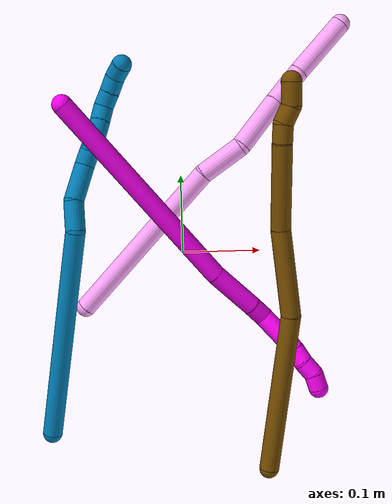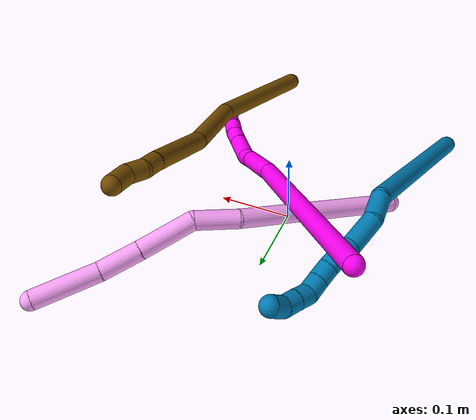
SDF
<sdf version="1.7">
 <world name="default">
  <model name="photoneo_s_sensor">
   <static>1</static>
   <pose>0 0 2 1.57079 1.57079 3.14159</pose>
   <link name="link">
    <inertial><mass>0.1</mass></inertial>
    <sensor name="sensor" type="depth">
     <update_rate>30</update_rate>
     <camera>
      <horizontal_fov>1.22</horizontal_fov>
      <image><width>1920</width><height>1200</height><format>B8G8R8</format></image>
      <clip><near>0.1</near><far>4</far></clip>
      <depth_camera><output>points</output></depth_camera>
     </camera>
     <plugin name="camera_plugin" filename="libgazebo_ros_depth_camera.so">
      <baseline>0.2</baseline>
      <alwaysOn>1</alwaysOn>
      <updateRate>0.0</updateRate>
      <cameraName>camera_ir</cameraName>
      <imageTopicName>/camera/color/image_raw</imageTopicName>
      <cameraInfoTopicName>/camera/color/camera_info</cameraInfoTopicName>
      <depthImageTopicName>/camera/depth/image_raw</depthImageTopicName>
      <depthImageCameraInfoTopicName>/camera/depth/camera_info</depthImageCameraInfoTopicName>
      <pointCloudTopicName>/camera/depth/points</pointCloudTopicName>
      <frameName>fr_optical</frameName>
      <pointCloudCutoff>0.1</pointCloudCutoff>
      <pointCloudCutoffMax>2.0</pointCloudCutoffMax>
      <distortionK1>0</distortionK1>
      <distortionK2>0</distortionK2>
      <distortionK3>0</distortionK3>
      <distortionT1>0</distortionT1>
      <distortionT2>0</distortionT2>
      <CxPrime>0</CxPrime>
      <Cx>0</Cx>
      <Cy>0</Cy>
      <focalLength>0</focalLength>
      <hackBaseline>0</hackBaseline>
     </plugin>
    </sensor>
   </link>
  </model>
  <model name="bin">
   <static>1</static>
   <link name="bottom">
    <collision name="collision-bottom">
     <pose>0 0 -0.01 0 -0 0</pose>
     <geometry><box><size>0.8 0.6 0.02</size></box></geometry>
     <surface>
      <friction><ode><mu>100</mu><mu2>100</mu2></ode></friction>
      <contact><collide_bitmask>65535</collide_bitmask></contact>
     </surface>
    </collision>
   </link>
   <link name="west_wall">
    <collision name="collision-west_wall">
     <pose>-0.41 0 0.1 0 -0 0</pose>
     <geometry><box><size>0.02 0.6 0.2</size></box></geometry>
     <surface>
      <friction><ode><mu>100</mu><mu2>100</mu2></ode></friction>
      <contact><collide_bitmask>65535</collide_bitmask></contact>
     </surface>
    </collision>
   </link>
   <link name="east_wall">
    <collision name="collision-east_wall">
     <pose>0.41 0 0.1 0 -0 0</pose>
     <geometry><box><size>0.02 0.6 0.2</size></box></geometry>
     <surface>
      <friction><ode><mu>100</mu><mu2>100</mu2></ode></friction>
      <contact><collide_bitmask>65535</collide_bitmask></contact>
     </surface>
    </collision>
   </link>
   <link name="south_wall">
    <collision name="collision-south_wall">
     <pose>0 -0.31 0.1 0 -0 0</pose>
     <geometry><box><size>0.8 0.02 0.2</size></box></geometry>
     <surface>
      <friction><ode><mu>100</mu><mu2>100</mu2></ode></friction>
      <contact><collide_bitmask>65535</collide_bitmask></contact>
     </surface>
    </collision>
   </link>
   <link name="north_wall">
    <collision name="collision-north_wall">
     <pose>0 0.31 0.1 0 -0 0</pose>
     <geometry><box><size>0.8 0.02 0.2</size></box></geometry>
     <surface>
      <friction><ode><mu>100</mu><mu2>100</mu2></ode></friction>
      <contact><collide_bitmask>65535</collide_bitmask></contact>
     </surface>
    </collision>
   </link>
  </model>
  <model name="4">
   <static>0</static>
   <link name="4">
    <collision name="collision-cylinder-e_1_1_4">
     <pose>0.076223 0.087944 -0.010959 -1.69477 0.710315 -0.795205</pose>
     <geometry><cylinder><radius>0.0125</radius><length>0.233788</length></cylinder></geometry>
     <surface>
      <friction><ode><mu>1.16</mu><mu2>1.16</mu2><slip1>0</slip1><slip2>0</slip2></ode></friction>
      <contact><ode><kp>1e+06</kp><kd>1</kd><max_vel>0</max_vel><min_depth>0.001</min_depth></ode></contact>
     </surface>
    </collision>
    <visual name="visual-cylinder-e_1_1_4">
     <pose>0.076223 0.087944 -0.010959 -1.69477 0.710315 -0.795205</pose>
     <geometry><cylinder><radius>0.0125</radius><length>0.233788</length></cylinder></geometry>
     <material><ambient>1 0.65098 0.996078 1</ambient></material>
    </visual>
    <collision name="collision-cylinder-e_2_4_5">
     <pose>0.169924 0.196975 -0.03117 -1.98428 0.649224 -0.951374</pose>
     <geometry><cylinder><radius>0.0125</radius><length>0.057818</length></cylinder></geometry>
     <surface>
      <friction><ode><mu>1.16</mu><mu2>1.16</mu2><slip1>0</slip1><slip2>0</slip2></ode></friction>
      <contact><ode><kp>1e+06</kp><kd>1</kd><max_vel>0</max_vel><min_depth>0.001</min_depth></ode></contact>
     </surface>
    </collision>
    <visual name="visual-cylinder-e_2_4_5">
     <pose>0.169924 0.196975 -0.03117 -1.98428 0.649224 -0.951374</pose>
     <geometry><cylinder><radius>0.0125</radius><length>0.057818</length></cylinder></geometry>
     <material><ambient>1 0.65098 0.996078 1</ambient></material>
    </visual>
    <collision name="collision-cylinder-e_3_5_6">
     <pose>0.195592 0.253221 -0.046031 -1.72898 0.226091 -0.264594</pose>
     <geometry><cylinder><radius>0.0125</radius><length>0.073066</length></cylinder></geometry>
     <surface>
      <friction><ode><mu>1.16</mu><mu2>1.16</mu2><slip1>0</slip1><slip2>0</slip2></ode></friction>
      <contact><ode><kp>1e+06</kp><kd>1</kd><max_vel>0</max_vel><min_depth>0.001</min_depth></ode></contact>
     </surface>
    </collision>
    <visual name="visual-cylinder-e_3_5_6">
     <pose>0.195592 0.253221 -0.046031 -1.72898 0.226091 -0.264594</pose>
     <geometry><cylinder><radius>0.0125</radius><length>0.073066</length></cylinder></geometry>
     <material><ambient>1 0.65098 0.996078 1</ambient></material>
    </visual>
    <collision name="collision-cylinder-e_4_6_7">
     <pose>0.210155 0.313283 -0.056219 -1.75267 0.246585 -0.295411</pose>
     <geometry><cylinder><radius>0.0125</radius><length>0.052221</length></cylinder></geometry>
     <surface>
      <friction><ode><mu>1.16</mu><mu2>1.16</mu2><slip1>0</slip1><slip2>0</slip2></ode></friction>
      <contact><ode><kp>1e+06</kp><kd>1</kd><max_vel>0</max_vel><min_depth>0.001</min_depth></ode></contact>
     </surface>
    </collision>
    <visual name="visual-cylinder-e_4_6_7">
     <pose>0.210155 0.313283 -0.056219 -1.75267 0.246585 -0.295411</pose>
     <geometry><cylinder><radius>0.0125</radius><length>0.052221</length></cylinder></geometry>
     <material><ambient>1 0.65098 0.996078 1</ambient></material>
    </visual>
    <collision name="collision-cylinder-e_5_7_2">
     <pose>0.230799 0.37646 -0.068422 -1.7674 0.350579 -0.425198</pose>
     <geometry><cylinder><radius>0.0125</radius><length>0.083106</length></cylinder></geometry>
     <surface>
      <friction><ode><mu>1.16</mu><mu2>1.16</mu2><slip1>0</slip1><slip2>0</slip2></ode></friction>
      <contact><ode><kp>1e+06</kp><kd>1</kd><max_vel>0</max_vel><min_depth>0.001</min_depth></ode></contact>
     </surface>
    </collision>
    <visual name="visual-cylinder-e_5_7_2">
     <pose>0.230799 0.37646 -0.068422 -1.7674 0.350579 -0.425198</pose>
     <geometry><cylinder><radius>0.0125</radius><length>0.083106</length></cylinder></geometry>
     <material><ambient>1 0.65098 0.996078 1</ambient></material>
    </visual>
    <collision name="collision-sphere-2">
     <pose>0.24507 0.414733 -0.076046 0 -0 0</pose>
     <geometry><sphere><radius>0.0125</radius></sphere></geometry>
     <surface>
      <friction><ode><mu>1.16</mu><mu2>1.16</mu2><slip1>0</slip1><slip2>0</slip2></ode></friction>
      <contact><ode><kp>1e+06</kp><kd>1</kd><max_vel>0</max_vel><min_depth>0.001</min_depth></ode></contact>
     </surface>
    </collision>
    <visual name="visual-sphere-2">
     <pose>0.24507 0.414733 -0.076046 0 -0 0</pose>
     <geometry><sphere><radius>0.0125</radius></sphere></geometry>
     <material><ambient>1 0.65098 0.996078 1</ambient></material>
    </visual>
    <collision name="collision-sphere-7">
     <pose>0.216528 0.338186 -0.060799 0 -0 0</pose>
     <geometry><sphere><radius>0.0125</radius></sphere></geometry>
     <surface>
      <friction><ode><mu>1.16</mu><mu2>1.16</mu2><slip1>0</slip1><slip2>0</slip2></ode></friction>
      <contact><ode><kp>1e+06</kp><kd>1</kd><max_vel>0</max_vel><min_depth>0.001</min_depth></ode></contact>
     </surface>
    </collision>
    <visual name="visual-sphere-7">
     <pose>0.216528 0.338186 -0.060799 0 -0 0</pose>
     <geometry><sphere><radius>0.0125</radius></sphere></geometry>
     <material><ambient>1 0.65098 0.996078 1</ambient></material>
    </visual>
    <collision name="collision-sphere-6">
     <pose>0.203781 0.288379 -0.05164 0 -0 0</pose>
     <geometry><sphere><radius>0.0125</radius></sphere></geometry>
     <surface>
      <friction><ode><mu>1.16</mu><mu2>1.16</mu2><slip1>0</slip1><slip2>0</slip2></ode></friction>
      <contact><ode><kp>1e+06</kp><kd>1</kd><max_vel>0</max_vel><min_depth>0.001</min_depth></ode></contact>
     </surface>
    </collision>
    <visual name="visual-sphere-6">
     <pose>0.203781 0.288379 -0.05164 0 -0 0</pose>
     <geometry><sphere><radius>0.0125</radius></sphere></geometry>
     <material><ambient>1 0.65098 0.996078 1</ambient></material>
    </visual>
    <collision name="collision-sphere-5">
     <pose>0.187402 0.218062 -0.040423 0 -0 0</pose>
     <geometry><sphere><radius>0.0125</radius></sphere></geometry>
     <surface>
      <friction><ode><mu>1.16</mu><mu2>1.16</mu2><slip1>0</slip1><slip2>0</slip2></ode></friction>
      <contact><ode><kp>1e+06</kp><kd>1</kd><max_vel>0</max_vel><min_depth>0.001</min_depth></ode></contact>
     </surface>
    </collision>
    <visual name="visual-sphere-5">
     <pose>0.187402 0.218062 -0.040423 0 -0 0</pose>
     <geometry><sphere><radius>0.0125</radius></sphere></geometry>
     <material><ambient>1 0.65098 0.996078 1</ambient></material>
    </visual>
    <collision name="collision-sphere-1">
     <geometry><sphere><radius>0.0125</radius></sphere></geometry>
     <surface>
      <friction><ode><mu>1.16</mu><mu2>1.16</mu2><slip1>0</slip1><slip2>0</slip2></ode></friction>
      <contact><ode><kp>1e+06</kp><kd>1</kd><max_vel>0</max_vel><min_depth>0.001</min_depth></ode></contact>
     </surface>
    </collision>
    <visual name="visual-sphere-1">
     <geometry><sphere><radius>0.0125</radius></sphere></geometry>
     <material><ambient>1 0.65098 0.996078 1</ambient></material>
    </visual>
    <collision name="collision-sphere-4">
     <pose>0.152447 0.175888 -0.021918 0 -0 0</pose>
     <geometry><sphere><radius>0.0125</radius></sphere></geometry>
     <surface>
      <friction><ode><mu>1.16</mu><mu2>1.16</mu2><slip1>0</slip1><slip2>0</slip2></ode></friction>
      <contact><ode><kp>1e+06</kp><kd>1</kd><max_vel>0</max_vel><min_depth>0.001</min_depth></ode></contact>
     </surface>
    </collision>
    <visual name="visual-sphere-4">
     <pose>0.152447 0.175888 -0.021918 0 -0 0</pose>
     <geometry><sphere><radius>0.0125</radius></sphere></geometry>
     <material><ambient>1 0.65098 0.996078 1</ambient></material>
    </visual>
    <inertial>
     <pose>0.144183 0.196194 -0.0327 0 -0 0</pose>
     <mass>0.5</mass>
     <inertia>
      <ixx>6.2e-05</ixx>
      <ixy>0</ixy>
      <ixz>0</ixz>
      <iyy>-0.000193</iyy>
      <iyz>0</iyz>
      <izz>-0.001662</izz>
     </inertia>
    </inertial>
   </link>
   <pose>-0.126677 -0.067678 0.012545 -0.922231 -1.05721 0.411206</pose>
  </model>
  <model name="9">
   <static>0</static>
   <link name="9">
    <collision name="collision-cylinder-e_1_1_4">
     <pose>0.03541 0.119574 0.05772 -1.12108 0.260625 -0.164157</pose>
     <geometry><cylinder><radius>0.0125</radius><length>0.274835</length></cylinder></geometry>
     <surface>
      <friction><ode><mu>1.16</mu><mu2>1.16</mu2><slip1>0</slip1><slip2>0</slip2></ode></friction>
      <contact><ode><kp>1e+06</kp><kd>1</kd><max_vel>0</max_vel><min_depth>0.001</min_depth></ode></contact>
     </surface>
    </collision>
    <visual name="visual-cylinder-e_1_1_4">
     <pose>0.03541 0.119574 0.05772 -1.12108 0.260625 -0.164157</pose>
     <geometry><cylinder><radius>0.0125</radius><length>0.274835</length></cylinder></geometry>
     <material><ambient>0 0.490196 0.709804 1</ambient></material>
    </visual>
    <collision name="collision-cylinder-e_2_4_5">
     <pose>0.071881 0.258093 0.11566 -1.5592 0.055886 -0.055242</pose>
     <geometry><cylinder><radius>0.0125</radius><length>0.03795</length></cylinder></geometry>
     <surface>
      <friction><ode><mu>1.16</mu><mu2>1.16</mu2><slip1>0</slip1><slip2>0</slip2></ode></friction>
      <contact><ode><kp>1e+06</kp><kd>1</kd><max_vel>0</max_vel><min_depth>0.001</min_depth></ode></contact>
     </surface>
    </collision>
    <visual name="visual-cylinder-e_2_4_5">
     <pose>0.071881 0.258093 0.11566 -1.5592 0.055886 -0.055242</pose>
     <geometry><cylinder><radius>0.0125</radius><length>0.03795</length></cylinder></geometry>
     <material><ambient>0 0.490196 0.709804 1</ambient></material>
    </visual>
    <collision name="collision-cylinder-e_3_5_6">
     <pose>0.081839 0.298726 0.113492 -1.68045 0.387245 -0.430908</pose>
     <geometry><cylinder><radius>0.0125</radius><length>0.047129</length></cylinder></geometry>
     <surface>
      <friction><ode><mu>1.16</mu><mu2>1.16</mu2><slip1>0</slip1><slip2>0</slip2></ode></friction>
      <contact><ode><kp>1e+06</kp><kd>1</kd><max_vel>0</max_vel><min_depth>0.001</min_depth></ode></contact>
     </surface>
    </collision>
    <visual name="visual-cylinder-e_3_5_6">
     <pose>0.081839 0.298726 0.113492 -1.68045 0.387245 -0.430908</pose>
     <geometry><cylinder><radius>0.0125</radius><length>0.047129</length></cylinder></geometry>
     <material><ambient>0 0.490196 0.709804 1</ambient></material>
    </visual>
    <collision name="collision-cylinder-e_4_6_7">
     <pose>0.095295 0.329169 0.11277 -1.38267 0.472665 -0.393462</pose>
     <geometry><cylinder><radius>0.0125</radius><length>0.020019</length></cylinder></geometry>
     <surface>
      <friction><ode><mu>1.16</mu><mu2>1.16</mu2><slip1>0</slip1><slip2>0</slip2></ode></friction>
      <contact><ode><kp>1e+06</kp><kd>1</kd><max_vel>0</max_vel><min_depth>0.001</min_depth></ode></contact>
     </surface>
    </collision>
    <visual name="visual-cylinder-e_4_6_7">
     <pose>0.095295 0.329169 0.11277 -1.38267 0.472665 -0.393462</pose>
     <geometry><cylinder><radius>0.0125</radius><length>0.020019</length></cylinder></geometry>
     <material><ambient>0 0.490196 0.709804 1</ambient></material>
    </visual>
    <collision name="collision-cylinder-e_5_7_8">
     <pose>0.104225 0.346692 0.112409 -1.79814 0.452316 -0.563409</pose>
     <geometry><cylinder><radius>0.0125</radius><length>0.020012</length></cylinder></geometry>
     <surface>
      <friction><ode><mu>1.16</mu><mu2>1.16</mu2><slip1>0</slip1><slip2>0</slip2></ode></friction>
      <contact><ode><kp>1e+06</kp><kd>1</kd><max_vel>0</max_vel><min_depth>0.001</min_depth></ode></contact>
     </surface>
    </collision>
    <visual name="visual-cylinder-e_5_7_8">
     <pose>0.104225 0.346692 0.112409 -1.79814 0.452316 -0.563409</pose>
     <geometry><cylinder><radius>0.0125</radius><length>0.020012</length></cylinder></geometry>
     <material><ambient>0 0.490196 0.709804 1</ambient></material>
    </visual>
    <collision name="collision-cylinder-e_6_8_9">
     <pose>0.112202 0.364721 0.109087 -1.70952 0.367826 -0.421241</pose>
     <geometry><cylinder><radius>0.0125</radius><length>0.020043</length></cylinder></geometry>
     <surface>
      <friction><ode><mu>1.16</mu><mu2>1.16</mu2><slip1>0</slip1><slip2>0</slip2></ode></friction>
      <contact><ode><kp>1e+06</kp><kd>1</kd><max_vel>0</max_vel><min_depth>0.001</min_depth></ode></contact>
     </surface>
    </collision>
    <visual name="visual-cylinder-e_6_8_9">
     <pose>0.112202 0.364721 0.109087 -1.70952 0.367826 -0.421241</pose>
     <geometry><cylinder><radius>0.0125</radius><length>0.020043</length></cylinder></geometry>
     <material><ambient>0 0.490196 0.709804 1</ambient></material>
    </visual>
    <collision name="collision-cylinder-e_7_9_10">
     <pose>0.119084 0.383376 0.106774 -1.67901 0.333956 -0.371372</pose>
     <geometry><cylinder><radius>0.0125</radius><length>0.020004</length></cylinder></geometry>
     <surface>
      <friction><ode><mu>1.16</mu><mu2>1.16</mu2><slip1>0</slip1><slip2>0</slip2></ode></friction>
      <contact><ode><kp>1e+06</kp><kd>1</kd><max_vel>0</max_vel><min_depth>0.001</min_depth></ode></contact>
     </surface>
    </collision>
    <visual name="visual-cylinder-e_7_9_10">
     <pose>0.119084 0.383376 0.106774 -1.67901 0.333956 -0.371372</pose>
     <geometry><cylinder><radius>0.0125</radius><length>0.020004</length></cylinder></geometry>
     <material><ambient>0 0.490196 0.709804 1</ambient></material>
    </visual>
    <collision name="collision-cylinder-e_8_10_11">
     <pose>0.127395 0.400774 0.109015 -1.1838 0.527309 -0.359057</pose>
     <geometry><cylinder><radius>0.0125</radius><length>0.020004</length></cylinder></geometry>
     <surface>
      <friction><ode><mu>1.16</mu><mu2>1.16</mu2><slip1>0</slip1><slip2>0</slip2></ode></friction>
      <contact><ode><kp>1e+06</kp><kd>1</kd><max_vel>0</max_vel><min_depth>0.001</min_depth></ode></contact>
     </surface>
    </collision>
    <visual name="visual-cylinder-e_8_10_11">
     <pose>0.127395 0.400774 0.109015 -1.1838 0.527309 -0.359057</pose>
     <geometry><cylinder><radius>0.0125</radius><length>0.020004</length></cylinder></geometry>
     <material><ambient>0 0.490196 0.709804 1</ambient></material>
    </visual>
    <collision name="collision-cylinder-e_9_11_12">
     <pose>0.137098 0.416977 0.115591 -1.18673 0.48586 -0.331224</pose>
     <geometry><cylinder><radius>0.0125</radius><length>0.02</length></cylinder></geometry>
     <surface>
      <friction><ode><mu>1.16</mu><mu2>1.16</mu2><slip1>0</slip1><slip2>0</slip2></ode></friction>
      <contact><ode><kp>1e+06</kp><kd>1</kd><max_vel>0</max_vel><min_depth>0.001</min_depth></ode></contact>
     </surface>
    </collision>
    <visual name="visual-cylinder-e_9_11_12">
     <pose>0.137098 0.416977 0.115591 -1.18673 0.48586 -0.331224</pose>
     <geometry><cylinder><radius>0.0125</radius><length>0.02</length></cylinder></geometry>
     <material><ambient>0 0.490196 0.709804 1</ambient></material>
    </visual>
    <collision name="collision-cylinder-e_10_12_2">
     <pose>0.147146 0.430475 0.125464 -0.679513 0.567735 -0.205517</pose>
     <geometry><cylinder><radius>0.0125</radius><length>0.020005</length></cylinder></geometry>
     <surface>
      <friction><ode><mu>1.16</mu><mu2>1.16</mu2><slip1>0</slip1><slip2>0</slip2></ode></friction>
      <contact><ode><kp>1e+06</kp><kd>1</kd><max_vel>0</max_vel><min_depth>0.001</min_depth></ode></contact>
     </surface>
    </collision>
    <visual name="visual-cylinder-e_10_12_2">
     <pose>0.147146 0.430475 0.125464 -0.679513 0.567735 -0.205517</pose>
     <geometry><cylinder><radius>0.0125</radius><length>0.020005</length></cylinder></geometry>
     <material><ambient>0 0.490196 0.709804 1</ambient></material>
    </visual>
    <collision name="collision-sphere-2">
     <pose>0.152525 0.435775 0.132024 0 -0 0</pose>
     <geometry><sphere><radius>0.0125</radius></sphere></geometry>
     <surface>
      <friction><ode><mu>1.16</mu><mu2>1.16</mu2><slip1>0</slip1><slip2>0</slip2></ode></friction>
      <contact><ode><kp>1e+06</kp><kd>1</kd><max_vel>0</max_vel><min_depth>0.001</min_depth></ode></contact>
     </surface>
    </collision>
    <visual name="visual-sphere-2">
     <pose>0.152525 0.435775 0.132024 0 -0 0</pose>
     <geometry><sphere><radius>0.0125</radius></sphere></geometry>
     <material><ambient>0 0.490196 0.709804 1</ambient></material>
    </visual>
    <collision name="collision-sphere-12">
     <pose>0.141768 0.425176 0.118904 0 -0 0</pose>
     <geometry><sphere><radius>0.0125</radius></sphere></geometry>
     <surface>
      <friction><ode><mu>1.16</mu><mu2>1.16</mu2><slip1>0</slip1><slip2>0</slip2></ode></friction>
      <contact><ode><kp>1e+06</kp><kd>1</kd><max_vel>0</max_vel><min_depth>0.001</min_depth></ode></contact>
     </surface>
    </collision>
    <visual name="visual-sphere-12">
     <pose>0.141768 0.425176 0.118904 0 -0 0</pose>
     <geometry><sphere><radius>0.0125</radius></sphere></geometry>
     <material><ambient>0 0.490196 0.709804 1</ambient></material>
    </visual>
    <collision name="collision-sphere-11">
     <pose>0.132428 0.408779 0.112277 0 -0 0</pose>
     <geometry><sphere><radius>0.0125</radius></sphere></geometry>
     <surface>
      <friction><ode><mu>1.16</mu><mu2>1.16</mu2><slip1>0</slip1><slip2>0</slip2></ode></friction>
      <contact><ode><kp>1e+06</kp><kd>1</kd><max_vel>0</max_vel><min_depth>0.001</min_depth></ode></contact>
     </surface>
    </collision>
    <visual name="visual-sphere-11">
     <pose>0.132428 0.408779 0.112277 0 -0 0</pose>
     <geometry><sphere><radius>0.0125</radius></sphere></geometry>
     <material><ambient>0 0.490196 0.709804 1</ambient></material>
    </visual>
    <collision name="collision-sphere-10">
     <pose>0.122362 0.39277 0.105753 0 -0 0</pose>
     <geometry><sphere><radius>0.0125</radius></sphere></geometry>
     <surface>
      <friction><ode><mu>1.16</mu><mu2>1.16</mu2><slip1>0</slip1><slip2>0</slip2></ode></friction>
      <contact><ode><kp>1e+06</kp><kd>1</kd><max_vel>0</max_vel><min_depth>0.001</min_depth></ode></contact>
     </surface>
    </collision>
    <visual name="visual-sphere-10">
     <pose>0.122362 0.39277 0.105753 0 -0 0</pose>
     <geometry><sphere><radius>0.0125</radius></sphere></geometry>
     <material><ambient>0 0.490196 0.709804 1</ambient></material>
    </visual>
    <collision name="collision-sphere-9">
     <pose>0.115805 0.373982 0.107794 0 -0 0</pose>
     <geometry><sphere><radius>0.0125</radius></sphere></geometry>
     <surface>
      <friction><ode><mu>1.16</mu><mu2>1.16</mu2><slip1>0</slip1><slip2>0</slip2></ode></friction>
      <contact><ode><kp>1e+06</kp><kd>1</kd><max_vel>0</max_vel><min_depth>0.001</min_depth></ode></contact>
     </surface>
    </collision>
    <visual name="visual-sphere-9">
     <pose>0.115805 0.373982 0.107794 0 -0 0</pose>
     <geometry><sphere><radius>0.0125</radius></sphere></geometry>
     <material><ambient>0 0.490196 0.709804 1</ambient></material>
    </visual>
    <collision name="collision-sphere-4">
     <pose>0.070821 0.239149 0.11544 0 -0 0</pose>
     <geometry><sphere><radius>0.0125</radius></sphere></geometry>
     <surface>
      <friction><ode><mu>1.16</mu><mu2>1.16</mu2><slip1>0</slip1><slip2>0</slip2></ode></friction>
      <contact><ode><kp>1e+06</kp><kd>1</kd><max_vel>0</max_vel><min_depth>0.001</min_depth></ode></contact>
     </surface>
    </collision>
    <visual name="visual-sphere-4">
     <pose>0.070821 0.239149 0.11544 0 -0 0</pose>
     <geometry><sphere><radius>0.0125</radius></sphere></geometry>
     <material><ambient>0 0.490196 0.709804 1</ambient></material>
    </visual>
    <collision name="collision-sphere-1">
     <geometry><sphere><radius>0.0125</radius></sphere></geometry>
     <surface>
      <friction><ode><mu>1.16</mu><mu2>1.16</mu2><slip1>0</slip1><slip2>0</slip2></ode></friction>
      <contact><ode><kp>1e+06</kp><kd>1</kd><max_vel>0</max_vel><min_depth>0.001</min_depth></ode></contact>
     </surface>
    </collision>
    <visual name="visual-sphere-1">
     <geometry><sphere><radius>0.0125</radius></sphere></geometry>
     <material><ambient>0 0.490196 0.709804 1</ambient></material>
    </visual>
    <collision name="collision-sphere-8">
     <pose>0.108598 0.35546 0.11038 0 -0 0</pose>
     <geometry><sphere><radius>0.0125</radius></sphere></geometry>
     <surface>
      <friction><ode><mu>1.16</mu><mu2>1.16</mu2><slip1>0</slip1><slip2>0</slip2></ode></friction>
      <contact><ode><kp>1e+06</kp><kd>1</kd><max_vel>0</max_vel><min_depth>0.001</min_depth></ode></contact>
     </surface>
    </collision>
    <visual name="visual-sphere-8">
     <pose>0.108598 0.35546 0.11038 0 -0 0</pose>
     <geometry><sphere><radius>0.0125</radius></sphere></geometry>
     <material><ambient>0 0.490196 0.709804 1</ambient></material>
    </visual>
    <collision name="collision-sphere-5">
     <pose>0.07294 0.277037 0.115879 0 -0 0</pose>
     <geometry><sphere><radius>0.0125</radius></sphere></geometry>
     <surface>
      <friction><ode><mu>1.16</mu><mu2>1.16</mu2><slip1>0</slip1><slip2>0</slip2></ode></friction>
      <contact><ode><kp>1e+06</kp><kd>1</kd><max_vel>0</max_vel><min_depth>0.001</min_depth></ode></contact>
     </surface>
    </collision>
    <visual name="visual-sphere-5">
     <pose>0.07294 0.277037 0.115879 0 -0 0</pose>
     <geometry><sphere><radius>0.0125</radius></sphere></geometry>
     <material><ambient>0 0.490196 0.709804 1</ambient></material>
    </visual>
    <collision name="collision-sphere-6">
     <pose>0.090738 0.320415 0.111104 0 -0 0</pose>
     <geometry><sphere><radius>0.0125</radius></sphere></geometry>
     <surface>
      <friction><ode><mu>1.16</mu><mu2>1.16</mu2><slip1>0</slip1><slip2>0</slip2></ode></friction>
      <contact><ode><kp>1e+06</kp><kd>1</kd><max_vel>0</max_vel><min_depth>0.001</min_depth></ode></contact>
     </surface>
    </collision>
    <visual name="visual-sphere-6">
     <pose>0.090738 0.320415 0.111104 0 -0 0</pose>
     <geometry><sphere><radius>0.0125</radius></sphere></geometry>
     <material><ambient>0 0.490196 0.709804 1</ambient></material>
    </visual>
    <collision name="collision-sphere-7">
     <pose>0.099852 0.337924 0.114437 0 -0 0</pose>
     <geometry><sphere><radius>0.0125</radius></sphere></geometry>
     <surface>
      <friction><ode><mu>1.16</mu><mu2>1.16</mu2><slip1>0</slip1><slip2>0</slip2></ode></friction>
      <contact><ode><kp>1e+06</kp><kd>1</kd><max_vel>0</max_vel><min_depth>0.001</min_depth></ode></contact>
     </surface>
    </collision>
    <visual name="visual-sphere-7">
     <pose>0.099852 0.337924 0.114437 0 -0 0</pose>
     <geometry><sphere><radius>0.0125</radius></sphere></geometry>
     <material><ambient>0 0.490196 0.709804 1</ambient></material>
    </visual>
    <inertial>
     <pose>0.066351 0.220423 0.082867 0 -0 0</pose>
     <mass>0.5</mass>
     <inertia>
      <ixx>0.001412</ixx>
      <ixy>0</ixy>
      <ixz>0</ixz>
      <iyy>0.000568</iyy>
      <iyz>0</iyz>
      <izz>-0.001986</izz>
     </inertia>
    </inertial>
   </link>
   <pose>-0.173835 -0.229053 0.014697 -0.115408 -0.021559 0.099918</pose>
  </model>
  <model name="10">
   <static>0</static>
   <link name="10">
    <collision name="collision-cylinder-e_1_1_4">
     <pose>0.05232 -0.060065 0.12262 0.455489 0.365925 0.085716</pose>
     <geometry><cylinder><radius>0.0125</radius><length>0.292444</length></cylinder></geometry>
     <surface>
      <friction><ode><mu>1.16</mu><mu2>1.16</mu2><slip1>0</slip1><slip2>0</slip2></ode></friction>
      <contact><ode><kp>1e+06</kp><kd>1</kd><max_vel>0</max_vel><min_depth>0.001</min_depth></ode></contact>
     </surface>
    </collision>
    <visual name="visual-cylinder-e_1_1_4">
     <pose>0.05232 -0.060065 0.12262 0.455489 0.365925 0.085716</pose>
     <geometry><cylinder><radius>0.0125</radius><length>0.292444</length></cylinder></geometry>
     <material><ambient>1 0 0.964706 1</ambient></material>
    </visual>
    <collision name="collision-cylinder-e_2_4_5">
     <pose>0.115145 -0.130345 0.274469 0.336235 0.327083 0.055998</pose>
     <geometry><cylinder><radius>0.0125</radius><length>0.065391</length></cylinder></geometry>
     <surface>
      <friction><ode><mu>1.16</mu><mu2>1.16</mu2><slip1>0</slip1><slip2>0</slip2></ode></friction>
      <contact><ode><kp>1e+06</kp><kd>1</kd><max_vel>0</max_vel><min_depth>0.001</min_depth></ode></contact>
     </surface>
    </collision>
    <visual name="visual-cylinder-e_2_4_5">
     <pose>0.115145 -0.130345 0.274469 0.336235 0.327083 0.055998</pose>
     <geometry><cylinder><radius>0.0125</radius><length>0.065391</length></cylinder></geometry>
     <material><ambient>1 0 0.964706 1</ambient></material>
    </visual>
    <collision name="collision-cylinder-e_3_5_6">
     <pose>0.130464 -0.143883 0.313766 0.318701 0.426275 0.069536</pose>
     <geometry><cylinder><radius>0.0125</radius><length>0.02329</length></cylinder></geometry>
     <surface>
      <friction><ode><mu>1.16</mu><mu2>1.16</mu2><slip1>0</slip1><slip2>0</slip2></ode></friction>
      <contact><ode><kp>1e+06</kp><kd>1</kd><max_vel>0</max_vel><min_depth>0.001</min_depth></ode></contact>
     </surface>
    </collision>
    <visual name="visual-cylinder-e_3_5_6">
     <pose>0.130464 -0.143883 0.313766 0.318701 0.426275 0.069536</pose>
     <geometry><cylinder><radius>0.0125</radius><length>0.02329</length></cylinder></geometry>
     <material><ambient>1 0 0.964706 1</ambient></material>
    </visual>
    <collision name="collision-cylinder-e_4_6_7">
     <pose>0.135131 -0.157868 0.339333 0.602646 -0.007894 -0.002453</pose>
     <geometry><cylinder><radius>0.0125</radius><length>0.037626</length></cylinder></geometry>
     <surface>
      <friction><ode><mu>1.16</mu><mu2>1.16</mu2><slip1>0</slip1><slip2>0</slip2></ode></friction>
      <contact><ode><kp>1e+06</kp><kd>1</kd><max_vel>0</max_vel><min_depth>0.001</min_depth></ode></contact>
     </surface>
    </collision>
    <visual name="visual-cylinder-e_4_6_7">
     <pose>0.135131 -0.157868 0.339333 0.602646 -0.007894 -0.002453</pose>
     <geometry><cylinder><radius>0.0125</radius><length>0.037626</length></cylinder></geometry>
     <material><ambient>1 0 0.964706 1</ambient></material>
    </visual>
    <collision name="collision-cylinder-e_5_7_8">
     <pose>0.135225 -0.174428 0.363664 0.588663 0.022835 0.006922</pose>
     <geometry><cylinder><radius>0.0125</radius><length>0.021246</length></cylinder></geometry>
     <surface>
      <friction><ode><mu>1.16</mu><mu2>1.16</mu2><slip1>0</slip1><slip2>0</slip2></ode></friction>
      <contact><ode><kp>1e+06</kp><kd>1</kd><max_vel>0</max_vel><min_depth>0.001</min_depth></ode></contact>
     </surface>
    </collision>
    <visual name="visual-cylinder-e_5_7_8">
     <pose>0.135225 -0.174428 0.363664 0.588663 0.022835 0.006922</pose>
     <geometry><cylinder><radius>0.0125</radius><length>0.021246</length></cylinder></geometry>
     <material><ambient>1 0 0.964706 1</ambient></material>
    </visual>
    <collision name="collision-cylinder-e_6_8_9">
     <pose>0.135929 -0.187302 0.379648 0.773062 0.046207 0.018809</pose>
     <geometry><cylinder><radius>0.0125</radius><length>0.020003</length></cylinder></geometry>
     <surface>
      <friction><ode><mu>1.16</mu><mu2>1.16</mu2><slip1>0</slip1><slip2>0</slip2></ode></friction>
      <contact><ode><kp>1e+06</kp><kd>1</kd><max_vel>0</max_vel><min_depth>0.001</min_depth></ode></contact>
     </surface>
    </collision>
    <visual name="visual-cylinder-e_6_8_9">
     <pose>0.135929 -0.187302 0.379648 0.773062 0.046207 0.018809</pose>
     <geometry><cylinder><radius>0.0125</radius><length>0.020003</length></cylinder></geometry>
     <material><ambient>1 0 0.964706 1</ambient></material>
    </visual>
    <collision name="collision-cylinder-e_7_9_10">
     <pose>0.13782 -0.199619 0.395132 0.569911 0.143311 0.042046</pose>
     <geometry><cylinder><radius>0.0125</radius><length>0.02</length></cylinder></geometry>
     <surface>
      <friction><ode><mu>1.16</mu><mu2>1.16</mu2><slip1>0</slip1><slip2>0</slip2></ode></friction>
      <contact><ode><kp>1e+06</kp><kd>1</kd><max_vel>0</max_vel><min_depth>0.001</min_depth></ode></contact>
     </surface>
    </collision>
    <visual name="visual-cylinder-e_7_9_10">
     <pose>0.13782 -0.199619 0.395132 0.569911 0.143311 0.042046</pose>
     <geometry><cylinder><radius>0.0125</radius><length>0.02</length></cylinder></geometry>
     <material><ambient>1 0 0.964706 1</ambient></material>
    </visual>
    <collision name="collision-cylinder-e_8_10_2">
     <pose>0.143061 -0.212168 0.409254 0.894239 0.391197 0.189442</pose>
     <geometry><cylinder><radius>0.0125</radius><length>0.02</length></cylinder></geometry>
     <surface>
      <friction><ode><mu>1.16</mu><mu2>1.16</mu2><slip1>0</slip1><slip2>0</slip2></ode></friction>
      <contact><ode><kp>1e+06</kp><kd>1</kd><max_vel>0</max_vel><min_depth>0.001</min_depth></ode></contact>
     </surface>
    </collision>
    <visual name="visual-cylinder-e_8_10_2">
     <pose>0.143061 -0.212168 0.409254 0.894239 0.391197 0.189442</pose>
     <geometry><cylinder><radius>0.0125</radius><length>0.02</length></cylinder></geometry>
     <material><ambient>1 0 0.964706 1</ambient></material>
    </visual>
    <collision name="collision-sphere-2">
     <pose>0.146874 -0.219376 0.415042 0 -0 0</pose>
     <geometry><sphere><radius>0.0125</radius></sphere></geometry>
     <surface>
      <friction><ode><mu>1.16</mu><mu2>1.16</mu2><slip1>0</slip1><slip2>0</slip2></ode></friction>
      <contact><ode><kp>1e+06</kp><kd>1</kd><max_vel>0</max_vel><min_depth>0.001</min_depth></ode></contact>
     </surface>
    </collision>
    <visual name="visual-sphere-2">
     <pose>0.146874 -0.219376 0.415042 0 -0 0</pose>
     <geometry><sphere><radius>0.0125</radius></sphere></geometry>
     <material><ambient>1 0 0.964706 1</ambient></material>
    </visual>
    <collision name="collision-sphere-10">
     <pose>0.139248 -0.20496 0.403466 0 -0 0</pose>
     <geometry><sphere><radius>0.0125</radius></sphere></geometry>
     <surface>
      <friction><ode><mu>1.16</mu><mu2>1.16</mu2><slip1>0</slip1><slip2>0</slip2></ode></friction>
      <contact><ode><kp>1e+06</kp><kd>1</kd><max_vel>0</max_vel><min_depth>0.001</min_depth></ode></contact>
     </surface>
    </collision>
    <visual name="visual-sphere-10">
     <pose>0.139248 -0.20496 0.403466 0 -0 0</pose>
     <geometry><sphere><radius>0.0125</radius></sphere></geometry>
     <material><ambient>1 0 0.964706 1</ambient></material>
    </visual>
    <collision name="collision-sphere-9">
     <pose>0.136391 -0.194279 0.386799 0 -0 0</pose>
     <geometry><sphere><radius>0.0125</radius></sphere></geometry>
     <surface>
      <friction><ode><mu>1.16</mu><mu2>1.16</mu2><slip1>0</slip1><slip2>0</slip2></ode></friction>
      <contact><ode><kp>1e+06</kp><kd>1</kd><max_vel>0</max_vel><min_depth>0.001</min_depth></ode></contact>
     </surface>
    </collision>
    <visual name="visual-sphere-9">
     <pose>0.136391 -0.194279 0.386799 0 -0 0</pose>
     <geometry><sphere><radius>0.0125</radius></sphere></geometry>
     <material><ambient>1 0 0.964706 1</ambient></material>
    </visual>
    <collision name="collision-sphere-4">
     <pose>0.10464 -0.120129 0.24524 0 -0 0</pose>
     <geometry><sphere><radius>0.0125</radius></sphere></geometry>
     <surface>
      <friction><ode><mu>1.16</mu><mu2>1.16</mu2><slip1>0</slip1><slip2>0</slip2></ode></friction>
      <contact><ode><kp>1e+06</kp><kd>1</kd><max_vel>0</max_vel><min_depth>0.001</min_depth></ode></contact>
     </surface>
    </collision>
    <visual name="visual-sphere-4">
     <pose>0.10464 -0.120129 0.24524 0 -0 0</pose>
     <geometry><sphere><radius>0.0125</radius></sphere></geometry>
     <material><ambient>1 0 0.964706 1</ambient></material>
    </visual>
    <collision name="collision-sphere-1">
     <geometry><sphere><radius>0.0125</radius></sphere></geometry>
     <surface>
      <friction><ode><mu>1.16</mu><mu2>1.16</mu2><slip1>0</slip1><slip2>0</slip2></ode></friction>
      <contact><ode><kp>1e+06</kp><kd>1</kd><max_vel>0</max_vel><min_depth>0.001</min_depth></ode></contact>
     </surface>
    </collision>
    <visual name="visual-sphere-1">
     <geometry><sphere><radius>0.0125</radius></sphere></geometry>
     <material><ambient>1 0 0.964706 1</ambient></material>
    </visual>
    <collision name="collision-sphere-8">
     <pose>0.135467 -0.180325 0.372497 0 -0 0</pose>
     <geometry><sphere><radius>0.0125</radius></sphere></geometry>
     <surface>
      <friction><ode><mu>1.16</mu><mu2>1.16</mu2><slip1>0</slip1><slip2>0</slip2></ode></friction>
      <contact><ode><kp>1e+06</kp><kd>1</kd><max_vel>0</max_vel><min_depth>0.001</min_depth></ode></contact>
     </surface>
    </collision>
    <visual name="visual-sphere-8">
     <pose>0.135467 -0.180325 0.372497 0 -0 0</pose>
     <geometry><sphere><radius>0.0125</radius></sphere></geometry>
     <material><ambient>1 0 0.964706 1</ambient></material>
    </visual>
    <collision name="collision-sphere-5">
     <pose>0.125649 -0.14056 0.303697 0 -0 0</pose>
     <geometry><sphere><radius>0.0125</radius></sphere></geometry>
     <surface>
      <friction><ode><mu>1.16</mu><mu2>1.16</mu2><slip1>0</slip1><slip2>0</slip2></ode></friction>
      <contact><ode><kp>1e+06</kp><kd>1</kd><max_vel>0</max_vel><min_depth>0.001</min_depth></ode></contact>
     </surface>
    </collision>
    <visual name="visual-sphere-5">
     <pose>0.125649 -0.14056 0.303697 0 -0 0</pose>
     <geometry><sphere><radius>0.0125</radius></sphere></geometry>
     <material><ambient>1 0 0.964706 1</ambient></material>
    </visual>
    <collision name="collision-sphere-6">
     <pose>0.135279 -0.147205 0.323835 0 -0 0</pose>
     <geometry><sphere><radius>0.0125</radius></sphere></geometry>
     <surface>
      <friction><ode><mu>1.16</mu><mu2>1.16</mu2><slip1>0</slip1><slip2>0</slip2></ode></friction>
      <contact><ode><kp>1e+06</kp><kd>1</kd><max_vel>0</max_vel><min_depth>0.001</min_depth></ode></contact>
     </surface>
    </collision>
    <visual name="visual-sphere-6">
     <pose>0.135279 -0.147205 0.323835 0 -0 0</pose>
     <geometry><sphere><radius>0.0125</radius></sphere></geometry>
     <material><ambient>1 0 0.964706 1</ambient></material>
    </visual>
    <collision name="collision-sphere-7">
     <pose>0.134982 -0.168531 0.354831 0 -0 0</pose>
     <geometry><sphere><radius>0.0125</radius></sphere></geometry>
     <surface>
      <friction><ode><mu>1.16</mu><mu2>1.16</mu2><slip1>0</slip1><slip2>0</slip2></ode></friction>
      <contact><ode><kp>1e+06</kp><kd>1</kd><max_vel>0</max_vel><min_depth>0.001</min_depth></ode></contact>
     </surface>
    </collision>
    <visual name="visual-sphere-7">
     <pose>0.134982 -0.168531 0.354831 0 -0 0</pose>
     <geometry><sphere><radius>0.0125</radius></sphere></geometry>
     <material><ambient>1 0 0.964706 1</ambient></material>
    </visual>
    <inertial>
     <pose>0.084325 -0.102136 0.210582 0 -0 0</pose>
     <mass>0.5</mass>
     <inertia>
      <ixx>0.002169</ixx>
      <ixy>0</ixy>
      <ixz>0</ixz>
      <iyy>0.002091</iyy>
      <iyz>0</iyz>
      <izz>0.000149</izz>
     </inertia>
    </inertial>
   </link>
   <pose>-0.139679 0.179633 0.138402 -2.01173 1.15755 -2.26444</pose>
  </model>
  <model name="12">
   <static>0</static>
   <link name="12">
    <collision name="collision-cylinder-e_1_1_4">
     <pose>0.025243 0.053877 0.083411 -0.573504 0.248944 -0.073756</pose>
     <geometry><cylinder><radius>0.0125</radius><length>0.204914</length></cylinder></geometry>
     <surface>
      <friction><ode><mu>1.16</mu><mu2>1.16</mu2><slip1>0</slip1><slip2>0</slip2></ode></friction>
      <contact><ode><kp>1e+06</kp><kd>1</kd><max_vel>0</max_vel><min_depth>0.001</min_depth></ode></contact>
     </surface>
    </collision>
    <visual name="visual-cylinder-e_1_1_4">
     <pose>0.025243 0.053877 0.083411 -0.573504 0.248944 -0.073756</pose>
     <geometry><cylinder><radius>0.0125</radius><length>0.204914</length></cylinder></geometry>
     <material><ambient>0.466667 0.301961 0 1</ambient></material>
    </visual>
    <collision name="collision-cylinder-e_2_4_5">
     <pose>0.051611 0.142173 0.209997 -0.673026 0.020363 -0.007123</pose>
     <geometry><cylinder><radius>0.0125</radius><length>0.110452</length></cylinder></geometry>
     <surface>
      <friction><ode><mu>1.16</mu><mu2>1.16</mu2><slip1>0</slip1><slip2>0</slip2></ode></friction>
      <contact><ode><kp>1e+06</kp><kd>1</kd><max_vel>0</max_vel><min_depth>0.001</min_depth></ode></contact>
     </surface>
    </collision>
    <visual name="visual-cylinder-e_2_4_5">
     <pose>0.051611 0.142173 0.209997 -0.673026 0.020363 -0.007123</pose>
     <geometry><cylinder><radius>0.0125</radius><length>0.110452</length></cylinder></geometry>
     <material><ambient>0.466667 0.301961 0 1</ambient></material>
    </visual>
    <collision name="collision-cylinder-e_3_5_6">
     <pose>0.058373 0.202819 0.300664 -0.504568 0.10354 -0.026713</pose>
     <geometry><cylinder><radius>0.0125</radius><length>0.109093</length></cylinder></geometry>
     <surface>
      <friction><ode><mu>1.16</mu><mu2>1.16</mu2><slip1>0</slip1><slip2>0</slip2></ode></friction>
      <contact><ode><kp>1e+06</kp><kd>1</kd><max_vel>0</max_vel><min_depth>0.001</min_depth></ode></contact>
     </surface>
    </collision>
    <visual name="visual-cylinder-e_3_5_6">
     <pose>0.058373 0.202819 0.300664 -0.504568 0.10354 -0.026713</pose>
     <geometry><cylinder><radius>0.0125</radius><length>0.109093</length></cylinder></geometry>
     <material><ambient>0.466667 0.301961 0 1</ambient></material>
    </visual>
    <collision name="collision-cylinder-e_4_6_7">
     <pose>0.065959 0.235744 0.357512 -0.621337 0.167703 -0.053957</pose>
     <geometry><cylinder><radius>0.0125</radius><length>0.023337</length></cylinder></geometry>
     <surface>
      <friction><ode><mu>1.16</mu><mu2>1.16</mu2><slip1>0</slip1><slip2>0</slip2></ode></friction>
      <contact><ode><kp>1e+06</kp><kd>1</kd><max_vel>0</max_vel><min_depth>0.001</min_depth></ode></contact>
     </surface>
    </collision>
    <visual name="visual-cylinder-e_4_6_7">
     <pose>0.065959 0.235744 0.357512 -0.621337 0.167703 -0.053957</pose>
     <geometry><cylinder><radius>0.0125</radius><length>0.023337</length></cylinder></geometry>
     <material><ambient>0.466667 0.301961 0 1</ambient></material>
    </visual>
    <collision name="collision-cylinder-e_5_7_8">
     <pose>0.074089 0.247526 0.375215 -0.547057 0.564022 -0.162219</pose>
     <geometry><cylinder><radius>0.0125</radius><length>0.023132</length></cylinder></geometry>
     <surface>
      <friction><ode><mu>1.16</mu><mu2>1.16</mu2><slip1>0</slip1><slip2>0</slip2></ode></friction>
      <contact><ode><kp>1e+06</kp><kd>1</kd><max_vel>0</max_vel><min_depth>0.001</min_depth></ode></contact>
     </surface>
    </collision>
    <visual name="visual-cylinder-e_5_7_8">
     <pose>0.074089 0.247526 0.375215 -0.547057 0.564022 -0.162219</pose>
     <geometry><cylinder><radius>0.0125</radius><length>0.023132</length></cylinder></geometry>
     <material><ambient>0.466667 0.301961 0 1</ambient></material>
    </visual>
    <collision name="collision-cylinder-e_6_8_2">
     <pose>0.082171 0.261401 0.394983 -0.655973 0.130992 -0.04463</pose>
     <geometry><cylinder><radius>0.0125</radius><length>0.029073</length></cylinder></geometry>
     <surface>
      <friction><ode><mu>1.16</mu><mu2>1.16</mu2><slip1>0</slip1><slip2>0</slip2></ode></friction>
      <contact><ode><kp>1e+06</kp><kd>1</kd><max_vel>0</max_vel><min_depth>0.001</min_depth></ode></contact>
     </surface>
    </collision>
    <visual name="visual-cylinder-e_6_8_2">
     <pose>0.082171 0.261401 0.394983 -0.655973 0.130992 -0.04463</pose>
     <geometry><cylinder><radius>0.0125</radius><length>0.029073</length></cylinder></geometry>
     <material><ambient>0.466667 0.301961 0 1</ambient></material>
    </visual>
    <collision name="collision-sphere-2">
     <pose>0.08407 0.270191 0.406404 0 -0 0</pose>
     <geometry><sphere><radius>0.0125</radius></sphere></geometry>
     <surface>
      <friction><ode><mu>1.16</mu><mu2>1.16</mu2><slip1>0</slip1><slip2>0</slip2></ode></friction>
      <contact><ode><kp>1e+06</kp><kd>1</kd><max_vel>0</max_vel><min_depth>0.001</min_depth></ode></contact>
     </surface>
    </collision>
    <visual name="visual-sphere-2">
     <pose>0.08407 0.270191 0.406404 0 -0 0</pose>
     <geometry><sphere><radius>0.0125</radius></sphere></geometry>
     <material><ambient>0.466667 0.301961 0 1</ambient></material>
    </visual>
    <collision name="collision-sphere-4">
     <pose>0.050487 0.107755 0.166823 0 -0 0</pose>
     <geometry><sphere><radius>0.0125</radius></sphere></geometry>
     <surface>
      <friction><ode><mu>1.16</mu><mu2>1.16</mu2><slip1>0</slip1><slip2>0</slip2></ode></friction>
      <contact><ode><kp>1e+06</kp><kd>1</kd><max_vel>0</max_vel><min_depth>0.001</min_depth></ode></contact>
     </surface>
    </collision>
    <visual name="visual-sphere-4">
     <pose>0.050487 0.107755 0.166823 0 -0 0</pose>
     <geometry><sphere><radius>0.0125</radius></sphere></geometry>
     <material><ambient>0.466667 0.301961 0 1</ambient></material>
    </visual>
    <collision name="collision-sphere-1">
     <geometry><sphere><radius>0.0125</radius></sphere></geometry>
     <surface>
      <friction><ode><mu>1.16</mu><mu2>1.16</mu2><slip1>0</slip1><slip2>0</slip2></ode></friction>
      <contact><ode><kp>1e+06</kp><kd>1</kd><max_vel>0</max_vel><min_depth>0.001</min_depth></ode></contact>
     </surface>
    </collision>
    <visual name="visual-sphere-1">
     <geometry><sphere><radius>0.0125</radius></sphere></geometry>
     <material><ambient>0.466667 0.301961 0 1</ambient></material>
    </visual>
    <collision name="collision-sphere-8">
     <pose>0.080273 0.25261 0.383563 0 -0 0</pose>
     <geometry><sphere><radius>0.0125</radius></sphere></geometry>
     <surface>
      <friction><ode><mu>1.16</mu><mu2>1.16</mu2><slip1>0</slip1><slip2>0</slip2></ode></friction>
      <contact><ode><kp>1e+06</kp><kd>1</kd><max_vel>0</max_vel><min_depth>0.001</min_depth></ode></contact>
     </surface>
    </collision>
    <visual name="visual-sphere-8">
     <pose>0.080273 0.25261 0.383563 0 -0 0</pose>
     <geometry><sphere><radius>0.0125</radius></sphere></geometry>
     <material><ambient>0.466667 0.301961 0 1</ambient></material>
    </visual>
    <collision name="collision-sphere-5">
     <pose>0.052736 0.176591 0.253171 0 -0 0</pose>
     <geometry><sphere><radius>0.0125</radius></sphere></geometry>
     <surface>
      <friction><ode><mu>1.16</mu><mu2>1.16</mu2><slip1>0</slip1><slip2>0</slip2></ode></friction>
      <contact><ode><kp>1e+06</kp><kd>1</kd><max_vel>0</max_vel><min_depth>0.001</min_depth></ode></contact>
     </surface>
    </collision>
    <visual name="visual-sphere-5">
     <pose>0.052736 0.176591 0.253171 0 -0 0</pose>
     <geometry><sphere><radius>0.0125</radius></sphere></geometry>
     <material><ambient>0.466667 0.301961 0 1</ambient></material>
    </visual>
    <collision name="collision-sphere-6">
     <pose>0.064011 0.229047 0.348158 0 -0 0</pose>
     <geometry><sphere><radius>0.0125</radius></sphere></geometry>
     <surface>
      <friction><ode><mu>1.16</mu><mu2>1.16</mu2><slip1>0</slip1><slip2>0</slip2></ode></friction>
      <contact><ode><kp>1e+06</kp><kd>1</kd><max_vel>0</max_vel><min_depth>0.001</min_depth></ode></contact>
     </surface>
    </collision>
    <visual name="visual-sphere-6">
     <pose>0.064011 0.229047 0.348158 0 -0 0</pose>
     <geometry><sphere><radius>0.0125</radius></sphere></geometry>
     <material><ambient>0.466667 0.301961 0 1</ambient></material>
    </visual>
    <collision name="collision-sphere-7">
     <pose>0.067906 0.242441 0.366866 0 -0 0</pose>
     <geometry><sphere><radius>0.0125</radius></sphere></geometry>
     <surface>
      <friction><ode><mu>1.16</mu><mu2>1.16</mu2><slip1>0</slip1><slip2>0</slip2></ode></friction>
      <contact><ode><kp>1e+06</kp><kd>1</kd><max_vel>0</max_vel><min_depth>0.001</min_depth></ode></contact>
     </surface>
    </collision>
    <visual name="visual-sphere-7">
     <pose>0.067906 0.242441 0.366866 0 -0 0</pose>
     <geometry><sphere><radius>0.0125</radius></sphere></geometry>
     <material><ambient>0.466667 0.301961 0 1</ambient></material>
    </visual>
    <inertial>
     <pose>0.045767 0.135393 0.203186 0 -0 0</pose>
     <mass>0.5</mass>
     <inertia>
      <ixx>0.000886</ixx>
      <ixy>0</ixy>
      <ixz>0</ixz>
      <iyy>0.000775</iyy>
      <iyz>0</iyz>
      <izz>-0.000675</izz>
     </inertia>
    </inertial>
   </link>
   <pose>0.103068 -0.278779 0.034249 -0.656283 0.212282 0.179099</pose>
  </model>
 </world>
</sdf>
